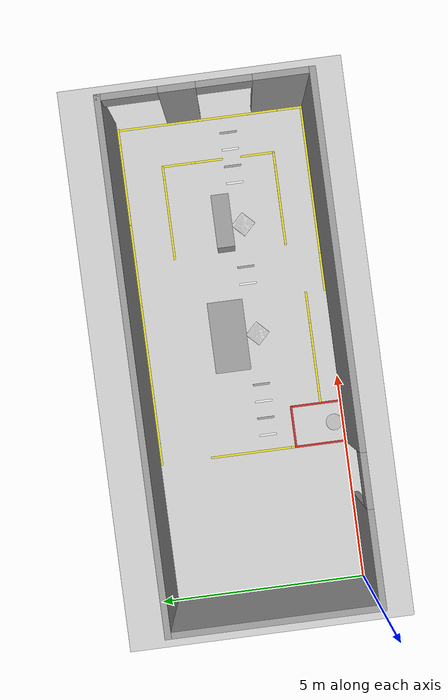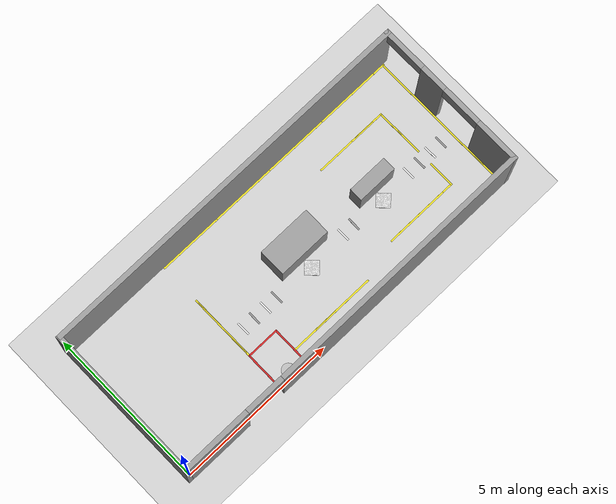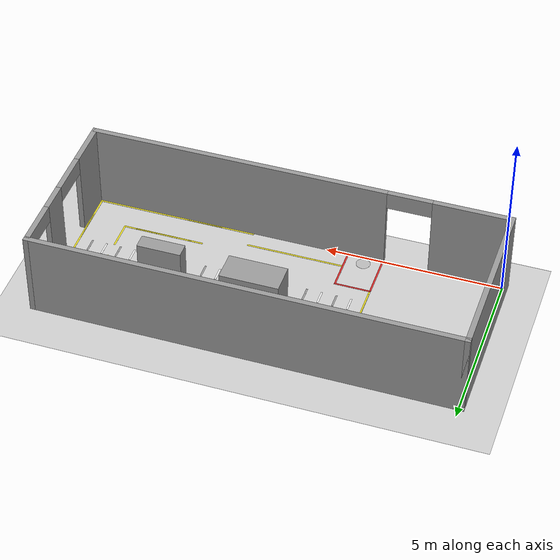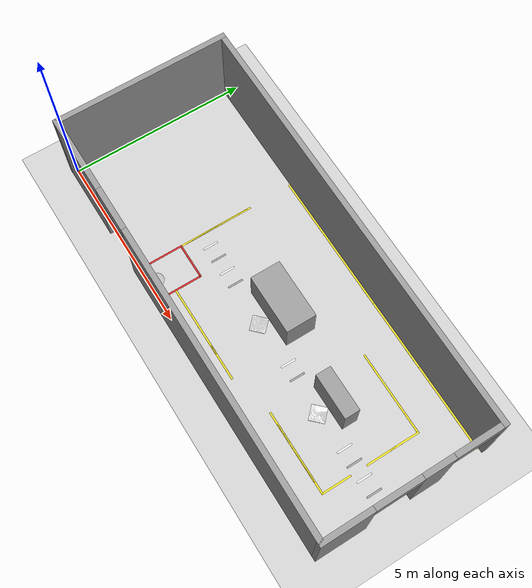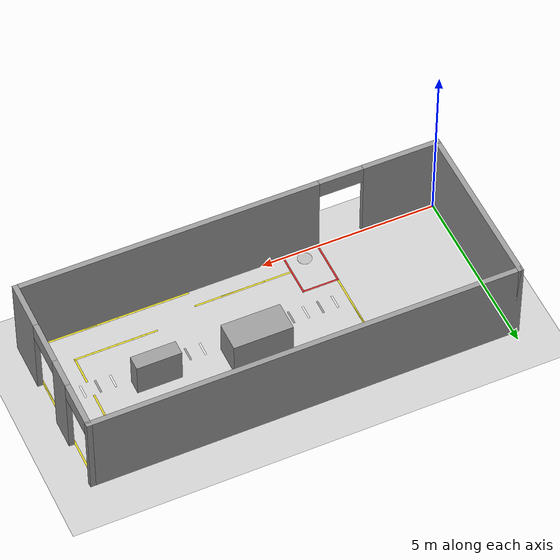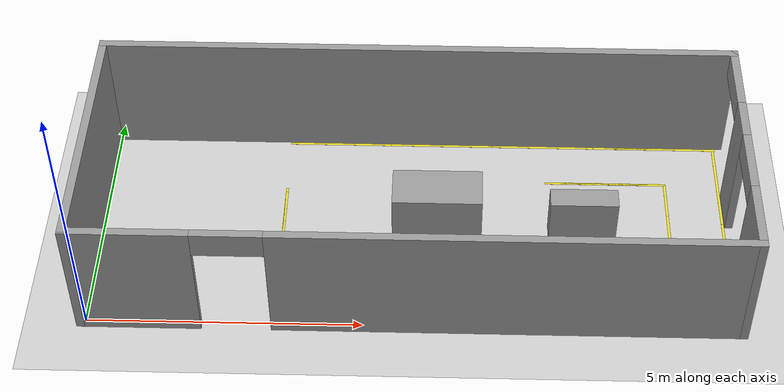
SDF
<sdf version="1.6">
 <world name="default">
  <light name="sun" type="directional">
   <pose>0 0 10 0 -0 0</pose>
   <diffuse>0.8 0.8 0.8 1</diffuse>
   <specular>0.2 0.2 0.2 1</specular>
   <attenuation>
    <range>1000</range>
    <constant>0.9</constant>
    <linear>0.01</linear>
    <quadratic>0.001</quadratic>
   </attenuation>
   <direction>-0.5 0.1 -0.9</direction>
  </light>
  <model name="ground_plane">
   <static>1</static>
   <link name="link">
    <collision name="collision">
     <geometry><plane><normal>0 0 1</normal><size>100 100</size></plane></geometry>
     <surface><friction><ode><mu>100</mu><mu2>50</mu2></ode></friction></surface>
    </collision>
    <visual name="visual">
     <cast_shadows>0</cast_shadows>
     <geometry><plane><normal>0 0 1</normal><size>100 100</size></plane></geometry>
     <material>
      <script><uri>file://media/materials/scripts/gazebo.material</uri><name>Gazebo/Grey</name></script>
     </material>
    </visual>
   </link>
  </model>
  <gravity>0 0 -9.8</gravity>
  <magnetic_field>6e-06 2.3e-05 -4.2e-05</magnetic_field>
  <atmosphere type="adiabatic"/>
  <physics name="default_physics" default="0" type="ode">
   <max_step_size>0.001</max_step_size>
   <real_time_factor>1</real_time_factor>
   <real_time_update_rate>1000</real_time_update_rate>
  </physics>
  <scene><ambient>0.4 0.4 0.4 1</ambient><background>0.7 0.7 0.7 1</background><shadows>1</shadows></scene>
  <spherical_coordinates>
   <surface_model>EARTH_WGS84</surface_model>
   <latitude_deg>0</latitude_deg>
   <longitude_deg>0</longitude_deg>
   <elevation>0</elevation>
   <heading_deg>0</heading_deg>
  </spherical_coordinates>
  <model name="demo_duvar_27072018_0">
   <pose>5.88 2.31 0 0 -0 0</pose>
   <link name="Wall_14">
    <pose>-0 -2.385 0 0 -0 0</pose>
    <visual name="Wall_14_Visual_0">
     <pose>-4.905 0 1.25 0 -0 0</pose>
     <geometry><box><size>2.25 0.15 2.5</size></box></geometry>
     <material>
      <script><uri>file://media/materials/scripts/gazebo.material</uri><name>Gazebo/Grey</name></script>
      <ambient>1 1 1 1</ambient>
     </material>
     <meta><layer>0</layer></meta>
    </visual>
    <collision name="Wall_14_Collision_0">
     <geometry><box><size>2.25 0.15 2.5</size></box></geometry>
     <pose>-4.905 0 1.25 0 -0 0</pose>
    </collision>
    <visual name="Wall_14_Visual_1">
     <pose>1.755 0 1.25 0 -0 0</pose>
     <geometry><box><size>8.55 0.15 2.5</size></box></geometry>
     <material>
      <script><uri>file://media/materials/scripts/gazebo.material</uri><name>Gazebo/Grey</name></script>
      <ambient>1 1 1 1</ambient>
     </material>
     <meta><layer>0</layer></meta>
    </visual>
    <collision name="Wall_14_Collision_1">
     <geometry><box><size>8.55 0.15 2.5</size></box></geometry>
     <pose>1.755 0 1.25 0 -0 0</pose>
    </collision>
    <visual name="Wall_14_Visual_2">
     <pose>-3.15 0 2.25 0 -0 0</pose>
     <geometry><box><size>1.26 0.15 0.5</size></box></geometry>
     <material>
      <script><uri>file://media/materials/scripts/gazebo.material</uri><name>Gazebo/Grey</name></script>
      <ambient>1 1 1 1</ambient>
     </material>
     <meta><layer>0</layer></meta>
    </visual>
    <collision name="Wall_14_Collision_2">
     <geometry><box><size>1.26 0.15 0.5</size></box></geometry>
     <pose>-3.15 0 2.25 0 -0 0</pose>
    </collision>
   </link>
   <link name="Wall_16">
    <pose>5.955 0 0 0 -0 1.5708</pose>
    <visual name="Wall_16_Visual_0">
     <pose>-1.75501 0 1.25 0 -0 0</pose>
     <geometry><box><size>1.41001 0.15 2.5</size></box></geometry>
     <material>
      <script><uri>file://media/materials/scripts/gazebo.material</uri><name>Gazebo/Grey</name></script>
      <ambient>1 1 1 1</ambient>
     </material>
     <meta><layer>0</layer></meta>
    </visual>
    <collision name="Wall_16_Collision_0">
     <geometry><box><size>1.41001 0.15 2.5</size></box></geometry>
     <pose>-1.75501 0 1.25 0 -0 0</pose>
    </collision>
    <visual name="Wall_16_Visual_1">
     <pose>0.63 0 1.25 0 -0 0</pose>
     <geometry><box><size>0.84 0.15 2.5</size></box></geometry>
     <material>
      <script><uri>file://media/materials/scripts/gazebo.material</uri><name>Gazebo/Grey</name></script>
      <ambient>1 1 1 1</ambient>
     </material>
     <meta><layer>0</layer></meta>
    </visual>
    <collision name="Wall_16_Collision_1">
     <geometry><box><size>0.84 0.15 2.5</size></box></geometry>
     <pose>0.63 0 1.25 0 -0 0</pose>
    </collision>
    <visual name="Wall_16_Visual_2">
     <pose>2.38501 0 1.25 0 -0 0</pose>
     <geometry><box><size>0.150013 0.15 2.5</size></box></geometry>
     <material>
      <script><uri>file://media/materials/scripts/gazebo.material</uri><name>Gazebo/Grey</name></script>
      <ambient>1 1 1 1</ambient>
     </material>
     <meta><layer>0</layer></meta>
    </visual>
    <collision name="Wall_16_Collision_2">
     <geometry><box><size>0.150013 0.15 2.5</size></box></geometry>
     <pose>2.38501 0 1.25 0 -0 0</pose>
    </collision>
    <visual name="Wall_16_Visual_3">
     <pose>-0.42 0 2.25 0 -0 0</pose>
     <geometry><box><size>1.26 0.15 0.5</size></box></geometry>
     <material>
      <script><uri>file://media/materials/scripts/gazebo.material</uri><name>Gazebo/Grey</name></script>
      <ambient>1 1 1 1</ambient>
     </material>
     <meta><layer>0</layer></meta>
    </visual>
    <collision name="Wall_16_Collision_3">
     <geometry><box><size>1.26 0.15 0.5</size></box></geometry>
     <pose>-0.42 0 2.25 0 -0 0</pose>
    </collision>
    <visual name="Wall_16_Visual_4">
     <pose>1.68 0 2.25 0 -0 0</pose>
     <geometry><box><size>1.26 0.15 0.5</size></box></geometry>
     <material>
      <script><uri>file://media/materials/scripts/gazebo.material</uri><name>Gazebo/Grey</name></script>
      <ambient>1 1 1 1</ambient>
     </material>
     <meta><layer>0</layer></meta>
    </visual>
    <collision name="Wall_16_Collision_4">
     <geometry><box><size>1.26 0.15 0.5</size></box></geometry>
     <pose>1.68 0 2.25 0 -0 0</pose>
    </collision>
   </link>
   <link name="Wall_19">
    <collision name="Wall_19_Collision">
     <geometry><box><size>12.06 0.15 2.5</size></box></geometry>
     <pose>0 0 1.25 0 -0 0</pose>
    </collision>
    <visual name="Wall_19_Visual">
     <pose>0 0 1.25 0 -0 0</pose>
     <geometry><box><size>12.06 0.15 2.5</size></box></geometry>
     <material>
      <script><uri>file://media/materials/scripts/gazebo.material</uri><name>Gazebo/Grey</name></script>
      <ambient>1 1 1 1</ambient>
     </material>
     <meta><layer>0</layer></meta>
    </visual>
    <pose>-0 2.385 0 0 -0 3.14159</pose>
   </link>
   <link name="Wall_21">
    <collision name="Wall_21_Collision">
     <geometry><box><size>4.92003 0.15 2.5</size></box></geometry>
     <pose>0 0 1.25 0 -0 0</pose>
    </collision>
    <visual name="Wall_21_Visual">
     <pose>0 0 1.25 0 -0 0</pose>
     <geometry><box><size>4.92003 0.15 2.5</size></box></geometry>
     <material>
      <script><uri>file://media/materials/scripts/gazebo.material</uri><name>Gazebo/Grey</name></script>
      <ambient>1 1 1 1</ambient>
     </material>
     <meta><layer>0</layer></meta>
    </visual>
    <pose>-5.955 0 0 0 -0 -1.5708</pose>
   </link>
   <static>1</static>
  </model>
  <model name="Makine1_168x84">
   <link name="link_0">
    <inertial>
     <mass>1</mass>
     <inertia>
      <ixx>0.166667</ixx>
      <ixy>0</ixy>
      <ixz>0</ixz>
      <iyy>0.166667</iyy>
      <iyz>0</iyz>
      <izz>0.166667</izz>
     </inertia>
    </inertial>
    <visual name="visual">
     <geometry><box><size>1.68 0.84 1</size></box></geometry>
     <material>
      <lighting>1</lighting>
      <script><uri>file://media/materials/scripts/gazebo.material</uri><name>Gazebo/Grey</name></script>
      <shader type="pixel"><normal_map>__default__</normal_map></shader>
      <ambient>0.3 0.3 0.3 1</ambient>
      <diffuse>0.7 0.7 0.7 1</diffuse>
      <specular>0.01 0.01 0.01 1</specular>
      <emissive>0 0 0 1</emissive>
     </material>
    </visual>
    <collision name="collision">
     <geometry><box><size>1.68 0.84 1</size></box></geometry>
     <surface>
      <friction>
       <ode><mu>1</mu><mu2>1</mu2><fdir1>0 0 0</fdir1><slip1>0</slip1><slip2>0</slip2></ode>
       <torsional>
        <coefficient>1</coefficient>
        <patch_radius>0</patch_radius>
        <surface_radius>0</surface_radius>
        <use_patch_radius>1</use_patch_radius>
        <ode><slip>0</slip></ode>
       </torsional>
      </friction>
      <bounce><restitution_coefficient>0</restitution_coefficient><threshold>1e+06</threshold></bounce>
      <contact>
       <collide_without_contact>0</collide_without_contact>
       <collide_without_contact_bitmask>1</collide_without_contact_bitmask>
       <collide_bitmask>1</collide_bitmask>
       <ode>
        <soft_cfm>0</soft_cfm>
        <soft_erp>0.2</soft_erp>
        <kp>1e+13</kp>
        <kd>1</kd>
        <max_vel>0.01</max_vel>
        <min_depth>0</min_depth>
       </ode>
       <bullet>
        <split_impulse>1</split_impulse>
        <split_impulse_penetration_threshold>-0.01</split_impulse_penetration_threshold>
        <soft_cfm>0</soft_cfm>
        <soft_erp>0.2</soft_erp>
        <kp>1e+13</kp>
        <kd>1</kd>
       </bullet>
      </contact>
     </surface>
    </collision>
   </link>
   <static>1</static>
   <pose>6.3 2.52 0.5 0 -0 0</pose>
  </model>
  <model name="Mekine2_126x42">
   <link name="link_1">
    <inertial>
     <mass>1</mass>
     <inertia>
      <ixx>0.166667</ixx>
      <ixy>0</ixy>
      <ixz>0</ixz>
      <iyy>0.166667</iyy>
      <iyz>0</iyz>
      <izz>0.166667</izz>
     </inertia>
    </inertial>
    <visual name="visual">
     <geometry><box><size>1.26 0.42 1</size></box></geometry>
     <material>
      <lighting>1</lighting>
      <script><uri>file://media/materials/scripts/gazebo.material</uri><name>Gazebo/Grey</name></script>
      <shader type="pixel"><normal_map>__default__</normal_map></shader>
      <ambient>0.3 0.3 0.3 1</ambient>
      <diffuse>0.7 0.7 0.7 1</diffuse>
      <specular>0.01 0.01 0.01 1</specular>
      <emissive>0 0 0 1</emissive>
     </material>
    </visual>
    <collision name="collision">
     <geometry><box><size>1.26 0.42 1</size></box></geometry>
     <surface>
      <friction>
       <ode><mu>1</mu><mu2>1</mu2><fdir1>0 0 0</fdir1><slip1>0</slip1><slip2>0</slip2></ode>
       <torsional>
        <coefficient>1</coefficient>
        <patch_radius>0</patch_radius>
        <surface_radius>0</surface_radius>
        <use_patch_radius>1</use_patch_radius>
        <ode><slip>0</slip></ode>
       </torsional>
      </friction>
      <bounce><restitution_coefficient>0</restitution_coefficient><threshold>1e+06</threshold></bounce>
      <contact>
       <collide_without_contact>0</collide_without_contact>
       <collide_without_contact_bitmask>1</collide_without_contact_bitmask>
       <collide_bitmask>1</collide_bitmask>
       <ode>
        <soft_cfm>0</soft_cfm>
        <soft_erp>0.2</soft_erp>
        <kp>1e+13</kp>
        <kd>1</kd>
        <max_vel>0.01</max_vel>
        <min_depth>0</min_depth>
       </ode>
       <bullet>
        <split_impulse>1</split_impulse>
        <split_impulse_penetration_threshold>-0.01</split_impulse_penetration_threshold>
        <soft_cfm>0</soft_cfm>
        <soft_erp>0.2</soft_erp>
        <kp>1e+13</kp>
        <kd>1</kd>
       </bullet>
      </contact>
     </surface>
    </collision>
   </link>
   <static>0</static>
   <pose>9.03 2.31 0.499999 -3e-06 0 -9e-06</pose>
  </model>
  <model name="oneDemoParking">
   <link name="link_1">
    <inertial>
     <mass>1</mass>
     <inertia>
      <ixx>0.166667</ixx>
      <ixy>0</ixy>
      <ixz>0</ixz>
      <iyy>0.166667</iyy>
      <iyz>0</iyz>
      <izz>0.166667</izz>
     </inertia>
    </inertial>
    <visual name="visual">
     <pose>-0.5 0 0 0 -0 0</pose>
     <geometry><box><size>0.05 1.26 0.001</size></box></geometry>
     <material>
      <lighting>1</lighting>
      <script><uri>file://media/materials/scripts/gazebo.material</uri><name>Gazebo/Red</name></script>
      <shader type="pixel"><normal_map>__default__</normal_map></shader>
     </material>
    </visual>
    <visual name="ModelPreview_3::link_1::visual_3">
     <pose>0 0.605 0 0 -0 0</pose>
     <geometry><box><size>1.05 0.05 0.001</size></box></geometry>
     <material>
      <lighting>1</lighting>
      <script><uri>file://media/materials/scripts/gazebo.material</uri><name>Gazebo/Red</name></script>
      <shader type="pixel"><normal_map>__default__</normal_map></shader>
     </material>
    </visual>
    <visual name="ModelPreview_3::link_1::visual_2">
     <pose>0.5 0 0 0 -0 0</pose>
     <geometry><box><size>0.05 1.26 0.001</size></box></geometry>
     <material>
      <lighting>1</lighting>
      <script><uri>file://media/materials/scripts/gazebo.material</uri><name>Gazebo/Red</name></script>
      <shader type="pixel"><normal_map>__default__</normal_map></shader>
     </material>
    </visual>
    <visual name="ModelPreview_3::link_1::visual_4">
     <pose>0.26 -0.31 0 0 -0 2.7</pose>
     <geometry>
      <mesh><uri>model://oneDemoParking/model/model.dae</uri><scale>0.22 0.22 0.22</scale></mesh>
     </geometry>
     <material><lighting>1</lighting><shader type="pixel"><normal_map>__default__</normal_map></shader></material>
    </visual>
   </link>
   <static>1</static>
   <pose>3.885 0.63 0 0 -0 0</pose>
  </model>
  <model name="whiteLine_42">
   <link name="link_3">
    <inertial>
     <mass>1</mass>
     <inertia>
      <ixx>0.166667</ixx>
      <ixy>0</ixy>
      <ixz>0</ixz>
      <iyy>0.166667</iyy>
      <iyz>0</iyz>
      <izz>0.166667</izz>
     </inertia>
    </inertial>
    <visual name="visual">
     <pose>-0.21 0 0 0 -0 0</pose>
     <geometry><box><size>0.05 0.42 0.001</size></box></geometry>
     <material>
      <lighting>1</lighting>
      <script><uri>file://media/materials/scripts/gazebo.material</uri><name>Gazebo/White</name></script>
      <shader type="pixel"><normal_map>__default__</normal_map></shader>
      <ambient>1 1 1 1</ambient>
      <diffuse>1 1 1 1</diffuse>
      <specular>0.01 0.01 0.01 1</specular>
      <emissive>0 0 0 1</emissive>
     </material>
    </visual>
    <visual name="ModelPreview_7::link_3::visual_1">
     <pose>0.21 0 0 0 -0 0</pose>
     <geometry><box><size>0.05 0.42 0.001</size></box></geometry>
     <material>
      <lighting>1</lighting>
      <script><uri>file://media/materials/scripts/gazebo.material</uri><name>Gazebo/Grey</name></script>
      <shader type="pixel"><normal_map>__default__</normal_map></shader>
      <ambient>1 1 1 1</ambient>
      <diffuse>1 1 1 1</diffuse>
      <specular>0.01 0.01 0.01 1</specular>
      <emissive>0 0 0 1</emissive>
     </material>
    </visual>
    <collision name="collision">
     <pose>-0.21 0 0 0 -0 0</pose>
     <geometry><box><size>0.05 0.42 0.001</size></box></geometry>
     <surface>
      <friction>
       <ode><mu>1</mu><mu2>1</mu2><fdir1>0 0 0</fdir1><slip1>0</slip1><slip2>0</slip2></ode>
       <torsional>
        <coefficient>1</coefficient>
        <patch_radius>0</patch_radius>
        <surface_radius>0</surface_radius>
        <use_patch_radius>1</use_patch_radius>
        <ode><slip>0</slip></ode>
       </torsional>
      </friction>
      <bounce><restitution_coefficient>0</restitution_coefficient><threshold>1e+06</threshold></bounce>
      <contact>
       <collide_without_contact>0</collide_without_contact>
       <collide_without_contact_bitmask>1</collide_without_contact_bitmask>
       <collide_bitmask>1</collide_bitmask>
       <ode>
        <soft_cfm>0</soft_cfm>
        <soft_erp>0.2</soft_erp>
        <kp>1e+13</kp>
        <kd>1</kd>
        <max_vel>0.01</max_vel>
        <min_depth>0</min_depth>
       </ode>
       <bullet>
        <split_impulse>1</split_impulse>
        <split_impulse_penetration_threshold>-0.01</split_impulse_penetration_threshold>
        <soft_cfm>0</soft_cfm>
        <soft_erp>0.2</soft_erp>
        <kp>1e+13</kp>
        <kd>1</kd>
       </bullet>
      </contact>
     </surface>
    </collision>
    <collision name="collision_1">
     <pose>0.21 0 0 0 -0 0</pose>
     <geometry><box><size>0.05 0.42 0.001</size></box></geometry>
     <surface>
      <friction>
       <ode><mu>1</mu><mu2>1</mu2><fdir1>0 0 0</fdir1><slip1>0</slip1><slip2>0</slip2></ode>
       <torsional>
        <coefficient>1</coefficient>
        <patch_radius>0</patch_radius>
        <surface_radius>0</surface_radius>
        <use_patch_radius>1</use_patch_radius>
        <ode><slip>0</slip></ode>
       </torsional>
      </friction>
      <bounce><restitution_coefficient>0</restitution_coefficient><threshold>1e+06</threshold></bounce>
      <contact>
       <collide_without_contact>0</collide_without_contact>
       <collide_without_contact_bitmask>1</collide_without_contact_bitmask>
       <collide_bitmask>1</collide_bitmask>
       <ode>
        <soft_cfm>0</soft_cfm>
        <soft_erp>0.2</soft_erp>
        <kp>1e+13</kp>
        <kd>1</kd>
        <max_vel>0.01</max_vel>
        <min_depth>0</min_depth>
       </ode>
       <bullet>
        <split_impulse>1</split_impulse>
        <split_impulse_penetration_threshold>-0.01</split_impulse_penetration_threshold>
        <soft_cfm>0</soft_cfm>
        <soft_erp>0.2</soft_erp>
        <kp>1e+13</kp>
        <kd>1</kd>
       </bullet>
      </contact>
     </surface>
    </collision>
   </link>
   <static>1</static>
   <pose>3.99 1.89 0 0 -0 0</pose>
  </model>
  <model name="whiteLine_42_0">
   <link name="link_3">
    <inertial>
     <mass>1</mass>
     <inertia>
      <ixx>0.166667</ixx>
      <ixy>0</ixy>
      <ixz>0</ixz>
      <iyy>0.166667</iyy>
      <iyz>0</iyz>
      <izz>0.166667</izz>
     </inertia>
    </inertial>
    <visual name="visual">
     <pose>-0.21 0 0 0 -0 0</pose>
     <geometry><box><size>0.05 0.42 0.001</size></box></geometry>
     <material>
      <lighting>1</lighting>
      <script><uri>file://media/materials/scripts/gazebo.material</uri><name>Gazebo/White</name></script>
      <shader type="pixel"><normal_map>__default__</normal_map></shader>
      <ambient>1 1 1 1</ambient>
      <diffuse>1 1 1 1</diffuse>
      <specular>0.01 0.01 0.01 1</specular>
      <emissive>0 0 0 1</emissive>
     </material>
    </visual>
    <visual name="ModelPreview_7::link_3::visual_1">
     <pose>0.21 0 0 0 -0 0</pose>
     <geometry><box><size>0.05 0.42 0.001</size></box></geometry>
     <material>
      <lighting>1</lighting>
      <script><uri>file://media/materials/scripts/gazebo.material</uri><name>Gazebo/Grey</name></script>
      <shader type="pixel"><normal_map>__default__</normal_map></shader>
      <ambient>1 1 1 1</ambient>
      <diffuse>1 1 1 1</diffuse>
      <specular>0.01 0.01 0.01 1</specular>
      <emissive>0 0 0 1</emissive>
     </material>
    </visual>
    <collision name="collision">
     <pose>-0.21 0 0 0 -0 0</pose>
     <geometry><box><size>0.05 0.42 0.001</size></box></geometry>
     <surface>
      <friction>
       <ode><mu>1</mu><mu2>1</mu2><fdir1>0 0 0</fdir1><slip1>0</slip1><slip2>0</slip2></ode>
       <torsional>
        <coefficient>1</coefficient>
        <patch_radius>0</patch_radius>
        <surface_radius>0</surface_radius>
        <use_patch_radius>1</use_patch_radius>
        <ode><slip>0</slip></ode>
       </torsional>
      </friction>
      <bounce><restitution_coefficient>0</restitution_coefficient><threshold>1e+06</threshold></bounce>
      <contact>
       <collide_without_contact>0</collide_without_contact>
       <collide_without_contact_bitmask>1</collide_without_contact_bitmask>
       <collide_bitmask>1</collide_bitmask>
       <ode>
        <soft_cfm>0</soft_cfm>
        <soft_erp>0.2</soft_erp>
        <kp>1e+13</kp>
        <kd>1</kd>
        <max_vel>0.01</max_vel>
        <min_depth>0</min_depth>
       </ode>
       <bullet>
        <split_impulse>1</split_impulse>
        <split_impulse_penetration_threshold>-0.01</split_impulse_penetration_threshold>
        <soft_cfm>0</soft_cfm>
        <soft_erp>0.2</soft_erp>
        <kp>1e+13</kp>
        <kd>1</kd>
       </bullet>
      </contact>
     </surface>
    </collision>
    <collision name="collision_1">
     <pose>0.21 0 0 0 -0 0</pose>
     <geometry><box><size>0.05 0.42 0.001</size></box></geometry>
     <surface>
      <friction>
       <ode><mu>1</mu><mu2>1</mu2><fdir1>0 0 0</fdir1><slip1>0</slip1><slip2>0</slip2></ode>
       <torsional>
        <coefficient>1</coefficient>
        <patch_radius>0</patch_radius>
        <surface_radius>0</surface_radius>
        <use_patch_radius>1</use_patch_radius>
        <ode><slip>0</slip></ode>
       </torsional>
      </friction>
      <bounce><restitution_coefficient>0</restitution_coefficient><threshold>1e+06</threshold></bounce>
      <contact>
       <collide_without_contact>0</collide_without_contact>
       <collide_without_contact_bitmask>1</collide_without_contact_bitmask>
       <collide_bitmask>1</collide_bitmask>
       <ode>
        <soft_cfm>0</soft_cfm>
        <soft_erp>0.2</soft_erp>
        <kp>1e+13</kp>
        <kd>1</kd>
        <max_vel>0.01</max_vel>
        <min_depth>0</min_depth>
       </ode>
       <bullet>
        <split_impulse>1</split_impulse>
        <split_impulse_penetration_threshold>-0.01</split_impulse_penetration_threshold>
        <soft_cfm>0</soft_cfm>
        <soft_erp>0.2</soft_erp>
        <kp>1e+13</kp>
        <kd>1</kd>
       </bullet>
      </contact>
     </surface>
    </collision>
   </link>
   <static>1</static>
   <pose>4.83 1.89 0 0 -0 0</pose>
  </model>
  <model name="whiteLine_42_1">
   <link name="link_3">
    <inertial>
     <mass>1</mass>
     <inertia>
      <ixx>0.166667</ixx>
      <ixy>0</ixy>
      <ixz>0</ixz>
      <iyy>0.166667</iyy>
      <iyz>0</iyz>
      <izz>0.166667</izz>
     </inertia>
    </inertial>
    <visual name="visual">
     <pose>-0.21 0 0 0 -0 0</pose>
     <geometry><box><size>0.05 0.42 0.001</size></box></geometry>
     <material>
      <lighting>1</lighting>
      <script><uri>file://media/materials/scripts/gazebo.material</uri><name>Gazebo/White</name></script>
      <shader type="pixel"><normal_map>__default__</normal_map></shader>
      <ambient>1 1 1 1</ambient>
      <diffuse>1 1 1 1</diffuse>
      <specular>0.01 0.01 0.01 1</specular>
      <emissive>0 0 0 1</emissive>
     </material>
    </visual>
    <visual name="ModelPreview_7::link_3::visual_1">
     <pose>0.21 0 0 0 -0 0</pose>
     <geometry><box><size>0.05 0.42 0.001</size></box></geometry>
     <material>
      <lighting>1</lighting>
      <script><uri>file://media/materials/scripts/gazebo.material</uri><name>Gazebo/Grey</name></script>
      <shader type="pixel"><normal_map>__default__</normal_map></shader>
      <ambient>1 1 1 1</ambient>
      <diffuse>1 1 1 1</diffuse>
      <specular>0.01 0.01 0.01 1</specular>
      <emissive>0 0 0 1</emissive>
     </material>
    </visual>
    <collision name="collision">
     <pose>-0.21 0 0 0 -0 0</pose>
     <geometry><box><size>0.05 0.42 0.001</size></box></geometry>
     <surface>
      <friction>
       <ode><mu>1</mu><mu2>1</mu2><fdir1>0 0 0</fdir1><slip1>0</slip1><slip2>0</slip2></ode>
       <torsional>
        <coefficient>1</coefficient>
        <patch_radius>0</patch_radius>
        <surface_radius>0</surface_radius>
        <use_patch_radius>1</use_patch_radius>
        <ode><slip>0</slip></ode>
       </torsional>
      </friction>
      <bounce><restitution_coefficient>0</restitution_coefficient><threshold>1e+06</threshold></bounce>
      <contact>
       <collide_without_contact>0</collide_without_contact>
       <collide_without_contact_bitmask>1</collide_without_contact_bitmask>
       <collide_bitmask>1</collide_bitmask>
       <ode>
        <soft_cfm>0</soft_cfm>
        <soft_erp>0.2</soft_erp>
        <kp>1e+13</kp>
        <kd>1</kd>
        <max_vel>0.01</max_vel>
        <min_depth>0</min_depth>
       </ode>
       <bullet>
        <split_impulse>1</split_impulse>
        <split_impulse_penetration_threshold>-0.01</split_impulse_penetration_threshold>
        <soft_cfm>0</soft_cfm>
        <soft_erp>0.2</soft_erp>
        <kp>1e+13</kp>
        <kd>1</kd>
       </bullet>
      </contact>
     </surface>
    </collision>
    <collision name="collision_1">
     <pose>0.21 0 0 0 -0 0</pose>
     <geometry><box><size>0.05 0.42 0.001</size></box></geometry>
     <surface>
      <friction>
       <ode><mu>1</mu><mu2>1</mu2><fdir1>0 0 0</fdir1><slip1>0</slip1><slip2>0</slip2></ode>
       <torsional>
        <coefficient>1</coefficient>
        <patch_radius>0</patch_radius>
        <surface_radius>0</surface_radius>
        <use_patch_radius>1</use_patch_radius>
        <ode><slip>0</slip></ode>
       </torsional>
      </friction>
      <bounce><restitution_coefficient>0</restitution_coefficient><threshold>1e+06</threshold></bounce>
      <contact>
       <collide_without_contact>0</collide_without_contact>
       <collide_without_contact_bitmask>1</collide_without_contact_bitmask>
       <collide_bitmask>1</collide_bitmask>
       <ode>
        <soft_cfm>0</soft_cfm>
        <soft_erp>0.2</soft_erp>
        <kp>1e+13</kp>
        <kd>1</kd>
        <max_vel>0.01</max_vel>
        <min_depth>0</min_depth>
       </ode>
       <bullet>
        <split_impulse>1</split_impulse>
        <split_impulse_penetration_threshold>-0.01</split_impulse_penetration_threshold>
        <soft_cfm>0</soft_cfm>
        <soft_erp>0.2</soft_erp>
        <kp>1e+13</kp>
        <kd>1</kd>
       </bullet>
      </contact>
     </surface>
    </collision>
   </link>
   <static>1</static>
   <pose>7.77 1.89 0 0 -0 0</pose>
  </model>
  <model name="whiteLine_42_2">
   <link name="link_3">
    <inertial>
     <mass>1</mass>
     <inertia>
      <ixx>0.166667</ixx>
      <ixy>0</ixy>
      <ixz>0</ixz>
      <iyy>0.166667</iyy>
      <iyz>0</iyz>
      <izz>0.166667</izz>
     </inertia>
    </inertial>
    <visual name="visual">
     <pose>-0.21 0 0 0 -0 0</pose>
     <geometry><box><size>0.05 0.42 0.001</size></box></geometry>
     <material>
      <lighting>1</lighting>
      <script><uri>file://media/materials/scripts/gazebo.material</uri><name>Gazebo/White</name></script>
      <shader type="pixel"><normal_map>__default__</normal_map></shader>
      <ambient>1 1 1 1</ambient>
      <diffuse>1 1 1 1</diffuse>
      <specular>0.01 0.01 0.01 1</specular>
      <emissive>0 0 0 1</emissive>
     </material>
    </visual>
    <visual name="ModelPreview_7::link_3::visual_1">
     <pose>0.21 0 0 0 -0 0</pose>
     <geometry><box><size>0.05 0.42 0.001</size></box></geometry>
     <material>
      <lighting>1</lighting>
      <script><uri>file://media/materials/scripts/gazebo.material</uri><name>Gazebo/Grey</name></script>
      <shader type="pixel"><normal_map>__default__</normal_map></shader>
      <ambient>1 1 1 1</ambient>
      <diffuse>1 1 1 1</diffuse>
      <specular>0.01 0.01 0.01 1</specular>
      <emissive>0 0 0 1</emissive>
     </material>
    </visual>
    <collision name="collision">
     <pose>-0.21 0 0 0 -0 0</pose>
     <geometry><box><size>0.05 0.42 0.001</size></box></geometry>
     <surface>
      <friction>
       <ode><mu>1</mu><mu2>1</mu2><fdir1>0 0 0</fdir1><slip1>0</slip1><slip2>0</slip2></ode>
       <torsional>
        <coefficient>1</coefficient>
        <patch_radius>0</patch_radius>
        <surface_radius>0</surface_radius>
        <use_patch_radius>1</use_patch_radius>
        <ode><slip>0</slip></ode>
       </torsional>
      </friction>
      <bounce><restitution_coefficient>0</restitution_coefficient><threshold>1e+06</threshold></bounce>
      <contact>
       <collide_without_contact>0</collide_without_contact>
       <collide_without_contact_bitmask>1</collide_without_contact_bitmask>
       <collide_bitmask>1</collide_bitmask>
       <ode>
        <soft_cfm>0</soft_cfm>
        <soft_erp>0.2</soft_erp>
        <kp>1e+13</kp>
        <kd>1</kd>
        <max_vel>0.01</max_vel>
        <min_depth>0</min_depth>
       </ode>
       <bullet>
        <split_impulse>1</split_impulse>
        <split_impulse_penetration_threshold>-0.01</split_impulse_penetration_threshold>
        <soft_cfm>0</soft_cfm>
        <soft_erp>0.2</soft_erp>
        <kp>1e+13</kp>
        <kd>1</kd>
       </bullet>
      </contact>
     </surface>
    </collision>
    <collision name="collision_1">
     <pose>0.21 0 0 0 -0 0</pose>
     <geometry><box><size>0.05 0.42 0.001</size></box></geometry>
     <surface>
      <friction>
       <ode><mu>1</mu><mu2>1</mu2><fdir1>0 0 0</fdir1><slip1>0</slip1><slip2>0</slip2></ode>
       <torsional>
        <coefficient>1</coefficient>
        <patch_radius>0</patch_radius>
        <surface_radius>0</surface_radius>
        <use_patch_radius>1</use_patch_radius>
        <ode><slip>0</slip></ode>
       </torsional>
      </friction>
      <bounce><restitution_coefficient>0</restitution_coefficient><threshold>1e+06</threshold></bounce>
      <contact>
       <collide_without_contact>0</collide_without_contact>
       <collide_without_contact_bitmask>1</collide_without_contact_bitmask>
       <collide_bitmask>1</collide_bitmask>
       <ode>
        <soft_cfm>0</soft_cfm>
        <soft_erp>0.2</soft_erp>
        <kp>1e+13</kp>
        <kd>1</kd>
        <max_vel>0.01</max_vel>
        <min_depth>0</min_depth>
       </ode>
       <bullet>
        <split_impulse>1</split_impulse>
        <split_impulse_penetration_threshold>-0.01</split_impulse_penetration_threshold>
        <soft_cfm>0</soft_cfm>
        <soft_erp>0.2</soft_erp>
        <kp>1e+13</kp>
        <kd>1</kd>
       </bullet>
      </contact>
     </surface>
    </collision>
   </link>
   <static>1</static>
   <pose>10.29 1.89 0 0 -0 0</pose>
  </model>
  <model name="whiteLine_42_3">
   <link name="link_3">
    <inertial>
     <mass>1</mass>
     <inertia>
      <ixx>0.166667</ixx>
      <ixy>0</ixy>
      <ixz>0</ixz>
      <iyy>0.166667</iyy>
      <iyz>0</iyz>
      <izz>0.166667</izz>
     </inertia>
    </inertial>
    <visual name="visual">
     <pose>-0.21 0 0 0 -0 0</pose>
     <geometry><box><size>0.05 0.42 0.001</size></box></geometry>
     <material>
      <lighting>1</lighting>
      <script><uri>file://media/materials/scripts/gazebo.material</uri><name>Gazebo/White</name></script>
      <shader type="pixel"><normal_map>__default__</normal_map></shader>
      <ambient>1 1 1 1</ambient>
      <diffuse>1 1 1 1</diffuse>
      <specular>0.01 0.01 0.01 1</specular>
      <emissive>0 0 0 1</emissive>
     </material>
    </visual>
    <visual name="ModelPreview_7::link_3::visual_1">
     <pose>0.21 0 0 0 -0 0</pose>
     <geometry><box><size>0.05 0.42 0.001</size></box></geometry>
     <material>
      <lighting>1</lighting>
      <script><uri>file://media/materials/scripts/gazebo.material</uri><name>Gazebo/Grey</name></script>
      <shader type="pixel"><normal_map>__default__</normal_map></shader>
      <ambient>1 1 1 1</ambient>
      <diffuse>1 1 1 1</diffuse>
      <specular>0.01 0.01 0.01 1</specular>
      <emissive>0 0 0 1</emissive>
     </material>
    </visual>
    <collision name="collision">
     <pose>-0.21 0 0 0 -0 0</pose>
     <geometry><box><size>0.05 0.42 0.001</size></box></geometry>
     <surface>
      <friction>
       <ode><mu>1</mu><mu2>1</mu2><fdir1>0 0 0</fdir1><slip1>0</slip1><slip2>0</slip2></ode>
       <torsional>
        <coefficient>1</coefficient>
        <patch_radius>0</patch_radius>
        <surface_radius>0</surface_radius>
        <use_patch_radius>1</use_patch_radius>
        <ode><slip>0</slip></ode>
       </torsional>
      </friction>
      <bounce><restitution_coefficient>0</restitution_coefficient><threshold>1e+06</threshold></bounce>
      <contact>
       <collide_without_contact>0</collide_without_contact>
       <collide_without_contact_bitmask>1</collide_without_contact_bitmask>
       <collide_bitmask>1</collide_bitmask>
       <ode>
        <soft_cfm>0</soft_cfm>
        <soft_erp>0.2</soft_erp>
        <kp>1e+13</kp>
        <kd>1</kd>
        <max_vel>0.01</max_vel>
        <min_depth>0</min_depth>
       </ode>
       <bullet>
        <split_impulse>1</split_impulse>
        <split_impulse_penetration_threshold>-0.01</split_impulse_penetration_threshold>
        <soft_cfm>0</soft_cfm>
        <soft_erp>0.2</soft_erp>
        <kp>1e+13</kp>
        <kd>1</kd>
       </bullet>
      </contact>
     </surface>
    </collision>
    <collision name="collision_1">
     <pose>0.21 0 0 0 -0 0</pose>
     <geometry><box><size>0.05 0.42 0.001</size></box></geometry>
     <surface>
      <friction>
       <ode><mu>1</mu><mu2>1</mu2><fdir1>0 0 0</fdir1><slip1>0</slip1><slip2>0</slip2></ode>
       <torsional>
        <coefficient>1</coefficient>
        <patch_radius>0</patch_radius>
        <surface_radius>0</surface_radius>
        <use_patch_radius>1</use_patch_radius>
        <ode><slip>0</slip></ode>
       </torsional>
      </friction>
      <bounce><restitution_coefficient>0</restitution_coefficient><threshold>1e+06</threshold></bounce>
      <contact>
       <collide_without_contact>0</collide_without_contact>
       <collide_without_contact_bitmask>1</collide_without_contact_bitmask>
       <collide_bitmask>1</collide_bitmask>
       <ode>
        <soft_cfm>0</soft_cfm>
        <soft_erp>0.2</soft_erp>
        <kp>1e+13</kp>
        <kd>1</kd>
        <max_vel>0.01</max_vel>
        <min_depth>0</min_depth>
       </ode>
       <bullet>
        <split_impulse>1</split_impulse>
        <split_impulse_penetration_threshold>-0.01</split_impulse_penetration_threshold>
        <soft_cfm>0</soft_cfm>
        <soft_erp>0.2</soft_erp>
        <kp>1e+13</kp>
        <kd>1</kd>
       </bullet>
      </contact>
     </surface>
    </collision>
   </link>
   <static>1</static>
   <pose>11.13 1.89 0 0 -0 0</pose>
  </model>
  <model name="newPedestrianSign">
   <link name="link_7">
    <inertial>
     <mass>1</mass>
     <inertia>
      <ixx>0.166667</ixx>
      <ixy>0</ixy>
      <ixz>0</ixz>
      <iyy>0.166667</iyy>
      <iyz>0</iyz>
      <izz>0.166667</izz>
     </inertia>
    </inertial>
    <visual name="visual">
     <pose>-0.2 -0.2 0 -1.5708 -0 0</pose>
     <geometry>
      <mesh><uri>model://newPedestrianSign/model/model.dae</uri><scale>0.7 0.7 0.7</scale></mesh>
     </geometry>
     <material><lighting>1</lighting></material>
    </visual>
   </link>
   <static>1</static>
   <pose>6.3 1.8 -0.02 0 -0 0</pose>
  </model>
  <model name="newPedestrianSign_0">
   <link name="link_7">
    <inertial>
     <mass>1</mass>
     <inertia>
      <ixx>0.166667</ixx>
      <ixy>0</ixy>
      <ixz>0</ixz>
      <iyy>0.166667</iyy>
      <iyz>0</iyz>
      <izz>0.166667</izz>
     </inertia>
    </inertial>
    <visual name="visual">
     <pose>-0.2 -0.2 0 -1.5708 -0 0</pose>
     <geometry>
      <mesh><uri>model://newPedestrianSign/model/model.dae</uri><scale>0.7 0.7 0.7</scale></mesh>
     </geometry>
     <material><lighting>1</lighting></material>
    </visual>
   </link>
   <static>1</static>
   <pose>9.03 1.8 -0.02 0 -0 0</pose>
  </model>
  <model name="line2m">
   <link name="link_0">
    <inertial>
     <mass>1</mass>
     <inertia>
      <ixx>0.166667</ixx>
      <ixy>0</ixy>
      <ixz>0</ixz>
      <iyy>0.166667</iyy>
      <iyz>0</iyz>
      <izz>0.166667</izz>
     </inertia>
    </inertial>
    <visual name="visual">
     <geometry><box><size>2 0.05 0.001</size></box></geometry>
     <material>
      <lighting>1</lighting>
      <script><uri>file://media/materials/scripts/gazebo.material</uri><name>Gazebo/Yellow</name></script>
     </material>
    </visual>
    <collision name="collision">
     <geometry><box><size>2 0.05 0.001</size></box></geometry>
     <surface>
      <friction>
       <ode><mu>1</mu><mu2>1</mu2><fdir1>0 0 0</fdir1><slip1>0</slip1><slip2>0</slip2></ode>
       <torsional>
        <coefficient>1</coefficient>
        <patch_radius>0</patch_radius>
        <surface_radius>0</surface_radius>
        <use_patch_radius>1</use_patch_radius>
        <ode><slip>0</slip></ode>
       </torsional>
      </friction>
      <bounce><restitution_coefficient>0</restitution_coefficient><threshold>1e+06</threshold></bounce>
      <contact>
       <collide_without_contact>0</collide_without_contact>
       <collide_without_contact_bitmask>1</collide_without_contact_bitmask>
       <collide_bitmask>1</collide_bitmask>
       <ode>
        <soft_cfm>0</soft_cfm>
        <soft_erp>0.2</soft_erp>
        <kp>1e+13</kp>
        <kd>1</kd>
        <max_vel>0.01</max_vel>
        <min_depth>0</min_depth>
       </ode>
       <bullet>
        <split_impulse>1</split_impulse>
        <split_impulse_penetration_threshold>-0.01</split_impulse_penetration_threshold>
        <soft_cfm>0</soft_cfm>
        <soft_erp>0.2</soft_erp>
        <kp>1e+13</kp>
        <kd>1</kd>
       </bullet>
      </contact>
     </surface>
    </collision>
   </link>
   <static>1</static>
   <pose>4.36039 4.59 0 0 -0 0</pose>
  </model>
  <model name="line2m_0">
   <link name="link_0">
    <inertial>
     <mass>1</mass>
     <inertia>
      <ixx>0.166667</ixx>
      <ixy>0</ixy>
      <ixz>0</ixz>
      <iyy>0.166667</iyy>
      <iyz>0</iyz>
      <izz>0.166667</izz>
     </inertia>
    </inertial>
    <visual name="visual">
     <geometry><box><size>2 0.05 0.001</size></box></geometry>
     <material>
      <lighting>1</lighting>
      <script><uri>file://media/materials/scripts/gazebo.material</uri><name>Gazebo/Yellow</name></script>
     </material>
    </visual>
    <collision name="collision">
     <geometry><box><size>2 0.05 0.001</size></box></geometry>
     <surface>
      <friction>
       <ode><mu>1</mu><mu2>1</mu2><fdir1>0 0 0</fdir1><slip1>0</slip1><slip2>0</slip2></ode>
       <torsional>
        <coefficient>1</coefficient>
        <patch_radius>0</patch_radius>
        <surface_radius>0</surface_radius>
        <use_patch_radius>1</use_patch_radius>
        <ode><slip>0</slip></ode>
       </torsional>
      </friction>
      <bounce><restitution_coefficient>0</restitution_coefficient><threshold>1e+06</threshold></bounce>
      <contact>
       <collide_without_contact>0</collide_without_contact>
       <collide_without_contact_bitmask>1</collide_without_contact_bitmask>
       <collide_bitmask>1</collide_bitmask>
       <ode>
        <soft_cfm>0</soft_cfm>
        <soft_erp>0.2</soft_erp>
        <kp>1e+13</kp>
        <kd>1</kd>
        <max_vel>0.01</max_vel>
        <min_depth>0</min_depth>
       </ode>
       <bullet>
        <split_impulse>1</split_impulse>
        <split_impulse_penetration_threshold>-0.01</split_impulse_penetration_threshold>
        <soft_cfm>0</soft_cfm>
        <soft_erp>0.2</soft_erp>
        <kp>1e+13</kp>
        <kd>1</kd>
       </bullet>
      </contact>
     </surface>
    </collision>
   </link>
   <static>1</static>
   <pose>6.35922 4.59 0 0 -0 0</pose>
  </model>
  <model name="line2m_1">
   <link name="link_0">
    <inertial>
     <mass>1</mass>
     <inertia>
      <ixx>0.166667</ixx>
      <ixy>0</ixy>
      <ixz>0</ixz>
      <iyy>0.166667</iyy>
      <iyz>0</iyz>
      <izz>0.166667</izz>
     </inertia>
    </inertial>
    <visual name="visual">
     <geometry><box><size>2 0.05 0.001</size></box></geometry>
     <material>
      <lighting>1</lighting>
      <script><uri>file://media/materials/scripts/gazebo.material</uri><name>Gazebo/Yellow</name></script>
     </material>
    </visual>
   </link>
   <static>1</static>
   <pose>8.36475 4.59 0 0 -0 0</pose>
  </model>
  <model name="line2m_2">
   <link name="link_0">
    <inertial>
     <mass>1</mass>
     <inertia>
      <ixx>0.166667</ixx>
      <ixy>0</ixy>
      <ixz>0</ixz>
      <iyy>0.166667</iyy>
      <iyz>0</iyz>
      <izz>0.166667</izz>
     </inertia>
    </inertial>
    <visual name="visual">
     <geometry><box><size>2 0.05 0.001</size></box></geometry>
     <material>
      <lighting>1</lighting>
      <script><uri>file://media/materials/scripts/gazebo.material</uri><name>Gazebo/Yellow</name></script>
     </material>
    </visual>
   </link>
   <static>1</static>
   <pose>10.3689 4.59 0 0 -0 0</pose>
  </model>
  <model name="line2m_3">
   <link name="link_0">
    <inertial>
     <mass>1</mass>
     <inertia>
      <ixx>0.166667</ixx>
      <ixy>0</ixy>
      <ixz>0</ixz>
      <iyy>0.166667</iyy>
      <iyz>0</iyz>
      <izz>0.166667</izz>
     </inertia>
    </inertial>
    <visual name="visual">
     <geometry><box><size>2 0.05 0.001</size></box></geometry>
     <material>
      <lighting>1</lighting>
      <script><uri>file://media/materials/scripts/gazebo.material</uri><name>Gazebo/Yellow</name></script>
     </material>
    </visual>
   </link>
   <static>1</static>
   <pose>10.7782 4.59 0 0 -0 0</pose>
  </model>
  <model name="line2m_4">
   <link name="link_0">
    <inertial>
     <mass>1</mass>
     <inertia>
      <ixx>0.166667</ixx>
      <ixy>0</ixy>
      <ixz>0</ixz>
      <iyy>0.166667</iyy>
      <iyz>0</iyz>
      <izz>0.166667</izz>
     </inertia>
    </inertial>
    <visual name="visual">
     <geometry><box><size>2 0.05 0.001</size></box></geometry>
     <material>
      <lighting>1</lighting>
      <script><uri>file://media/materials/scripts/gazebo.material</uri><name>Gazebo/Yellow</name></script>
     </material>
    </visual>
   </link>
   <static>1</static>
   <pose>11.73 3.60598 0 0 -0 1.5708</pose>
  </model>
  <model name="line2m_4_clone">
   <link name="link_0">
    <inertial>
     <mass>1</mass>
     <inertia>
      <ixx>0.166667</ixx>
      <ixy>0</ixy>
      <ixz>0</ixz>
      <iyy>0.166667</iyy>
      <iyz>0</iyz>
      <izz>0.166667</izz>
     </inertia>
    </inertial>
    <visual name="visual">
     <geometry><box><size>2 0.05 0.001</size></box></geometry>
     <material>
      <lighting>1</lighting>
      <script><uri>file://media/materials/scripts/gazebo.material</uri><name>Gazebo/Yellow</name></script>
     </material>
    </visual>
   </link>
   <static>1</static>
   <pose>11.73 1.62186 0 0 -0 1.5708</pose>
  </model>
  <model name="line2m_4_clone_0">
   <link name="link_0">
    <inertial>
     <mass>1</mass>
     <inertia>
      <ixx>0.166667</ixx>
      <ixy>0</ixy>
      <ixz>0</ixz>
      <iyy>0.166667</iyy>
      <iyz>0</iyz>
      <izz>0.166667</izz>
     </inertia>
    </inertial>
    <visual name="visual">
     <geometry><box><size>2 0.05 0.001</size></box></geometry>
     <material>
      <lighting>1</lighting>
      <script><uri>file://media/materials/scripts/gazebo.material</uri><name>Gazebo/Yellow</name></script>
     </material>
    </visual>
   </link>
   <static>1</static>
   <pose>11.73 0.984713 0 0 -0 1.5708</pose>
  </model>
  <model name="line2m_0_clone">
   <link name="link_0">
    <inertial>
     <mass>1</mass>
     <inertia>
      <ixx>0.166667</ixx>
      <ixy>0</ixy>
      <ixz>0</ixz>
      <iyy>0.166667</iyy>
      <iyz>0</iyz>
      <izz>0.166667</izz>
     </inertia>
    </inertial>
    <visual name="visual">
     <geometry><box><size>2 0.05 0.001</size></box></geometry>
     <material>
      <lighting>1</lighting>
      <script><uri>file://media/materials/scripts/gazebo.material</uri><name>Gazebo/Yellow</name></script>
     </material>
    </visual>
   </link>
   <static>1</static>
   <pose>10.7613 0.028 0 0 -0 0</pose>
  </model>
  <model name="line2m_0_clone_0">
   <link name="link_0">
    <inertial>
     <mass>1</mass>
     <inertia>
      <ixx>0.166667</ixx>
      <ixy>0</ixy>
      <ixz>0</ixz>
      <iyy>0.166667</iyy>
      <iyz>0</iyz>
      <izz>0.166667</izz>
     </inertia>
    </inertial>
    <visual name="visual">
     <geometry><box><size>2 0.05 0.001</size></box></geometry>
     <material>
      <lighting>1</lighting>
      <script><uri>file://media/materials/scripts/gazebo.material</uri><name>Gazebo/Yellow</name></script>
     </material>
    </visual>
   </link>
   <static>1</static>
   <pose>9.08316 0.028 0 0 -0 0</pose>
  </model>
  <model name="line2m_0_clone_1">
   <link name="link_0">
    <inertial>
     <mass>1</mass>
     <inertia>
      <ixx>0.166667</ixx>
      <ixy>0</ixy>
      <ixz>0</ixz>
      <iyy>0.166667</iyy>
      <iyz>0</iyz>
      <izz>0.166667</izz>
     </inertia>
    </inertial>
    <visual name="visual">
     <geometry><box><size>2 0.05 0.001</size></box></geometry>
     <material>
      <lighting>1</lighting>
      <script><uri>file://media/materials/scripts/gazebo.material</uri><name>Gazebo/Yellow</name></script>
     </material>
    </visual>
   </link>
   <static>1</static>
   <pose>8.14042 0.028 0 0 -0 0</pose>
  </model>
  <model name="line2m_0_clone_2">
   <link name="link_0">
    <inertial>
     <mass>1</mass>
     <inertia>
      <ixx>0.166667</ixx>
      <ixy>0</ixy>
      <ixz>0</ixz>
      <iyy>0.166667</iyy>
      <iyz>0</iyz>
      <izz>0.166667</izz>
     </inertia>
    </inertial>
    <visual name="visual">
     <geometry><box><size>2 0.05 0.001</size></box></geometry>
     <material>
      <lighting>1</lighting>
      <script><uri>file://media/materials/scripts/gazebo.material</uri><name>Gazebo/Yellow</name></script>
     </material>
    </visual>
   </link>
   <static>1</static>
   <pose>5.40196 0.498694 0 0 -0 0</pose>
  </model>
  <model name="line2m_0_clone_3">
   <link name="link_0">
    <inertial>
     <mass>1</mass>
     <inertia>
      <ixx>0.166667</ixx>
      <ixy>0</ixy>
      <ixz>0</ixz>
      <iyy>0.166667</iyy>
      <iyz>0</iyz>
      <izz>0.166667</izz>
     </inertia>
    </inertial>
    <visual name="visual">
     <geometry><box><size>2 0.05 0.001</size></box></geometry>
     <material>
      <lighting>1</lighting>
      <script><uri>file://media/materials/scripts/gazebo.material</uri><name>Gazebo/Yellow</name></script>
     </material>
    </visual>
   </link>
   <static>1</static>
   <pose>6.1742 0.500254 0 0 -0 0</pose>
  </model>
  <model name="line2m_4_clone_clone">
   <link name="link_0">
    <inertial>
     <mass>1</mass>
     <inertia>
      <ixx>0.166667</ixx>
      <ixy>0</ixy>
      <ixz>0</ixz>
      <iyy>0.166667</iyy>
      <iyz>0</iyz>
      <izz>0.166667</izz>
     </inertia>
    </inertial>
    <visual name="visual">
     <geometry><box><size>2 0.05 0.001</size></box></geometry>
     <material>
      <lighting>1</lighting>
      <script><uri>file://media/materials/scripts/gazebo.material</uri><name>Gazebo/Yellow</name></script>
     </material>
    </visual>
   </link>
   <static>1</static>
   <pose>3.39 2.35816 0 0 -0 1.5708</pose>
  </model>
  <model name="line2m_4_clone_clone_0">
   <link name="link_0">
    <inertial>
     <mass>1</mass>
     <inertia>
      <ixx>0.166667</ixx>
      <ixy>0</ixy>
      <ixz>0</ixz>
      <iyy>0.166667</iyy>
      <iyz>0</iyz>
      <izz>0.166667</izz>
     </inertia>
    </inertial>
    <visual name="visual">
     <geometry><box><size>2 0.05 0.001</size></box></geometry>
     <material>
      <lighting>1</lighting>
      <script><uri>file://media/materials/scripts/gazebo.material</uri><name>Gazebo/Yellow</name></script>
     </material>
    </visual>
   </link>
   <static>1</static>
   <pose>3.39 2.26257 0 0 -0 1.5708</pose>
  </model>
  <model name="line2m_5">
   <link name="link_0">
    <inertial>
     <mass>1</mass>
     <inertia>
      <ixx>0.166667</ixx>
      <ixy>0</ixy>
      <ixz>0</ixz>
      <iyy>0.166667</iyy>
      <iyz>0</iyz>
      <izz>0.166667</izz>
     </inertia>
    </inertial>
    <visual name="visual">
     <geometry><box><size>2 0.05 0.001</size></box></geometry>
     <material>
      <lighting>1</lighting>
      <script><uri>file://media/materials/scripts/gazebo.material</uri><name>Gazebo/Yellow</name></script>
     </material>
    </visual>
   </link>
   <static>1</static>
   <pose>9.37908 0.8425 0 0 -0 0</pose>
  </model>
  <model name="line2m_6">
   <link name="link_0">
    <inertial>
     <mass>1</mass>
     <inertia>
      <ixx>0.166667</ixx>
      <ixy>0</ixy>
      <ixz>0</ixz>
      <iyy>0.166667</iyy>
      <iyz>0</iyz>
      <izz>0.166667</izz>
     </inertia>
    </inertial>
    <visual name="visual">
     <geometry><box><size>2 0.05 0.001</size></box></geometry>
     <material>
      <lighting>1</lighting>
      <script><uri>file://media/materials/scripts/gazebo.material</uri><name>Gazebo/Yellow</name></script>
     </material>
    </visual>
   </link>
   <static>1</static>
   <pose>9.70515 0.844424 0 0 -0 0</pose>
  </model>
  <model name="line2m_7">
   <link name="link_0">
    <inertial>
     <mass>1</mass>
     <inertia>
      <ixx>0.166667</ixx>
      <ixy>0</ixy>
      <ixz>0</ixz>
      <iyy>0.166667</iyy>
      <iyz>0</iyz>
      <izz>0.166667</izz>
     </inertia>
    </inertial>
    <visual name="visual">
     <geometry><box><size>2 0.05 0.001</size></box></geometry>
     <material>
      <lighting>1</lighting>
      <script><uri>file://media/materials/scripts/gazebo.material</uri><name>Gazebo/Yellow</name></script>
     </material>
    </visual>
   </link>
   <static>1</static>
   <pose>9.37908 3.6133 0 0 -0 0</pose>
  </model>
  <model name="line2m_8">
   <link name="link_0">
    <inertial>
     <mass>1</mass>
     <inertia>
      <ixx>0.166667</ixx>
      <ixy>0</ixy>
      <ixz>0</ixz>
      <iyy>0.166667</iyy>
      <iyz>0</iyz>
      <izz>0.166667</izz>
     </inertia>
    </inertial>
    <visual name="visual">
     <geometry><box><size>2 0.05 0.001</size></box></geometry>
     <material>
      <lighting>1</lighting>
      <script><uri>file://media/materials/scripts/gazebo.material</uri><name>Gazebo/Yellow</name></script>
     </material>
    </visual>
   </link>
   <static>1</static>
   <pose>9.70515 3.6133 0 0 -0 0</pose>
  </model>
  <model name="line_84">
   <link name="link_8">
    <inertial>
     <mass>1</mass>
     <inertia>
      <ixx>0.166667</ixx>
      <ixy>0</ixy>
      <ixz>0</ixz>
      <iyy>0.166667</iyy>
      <iyz>0</iyz>
      <izz>0.166667</izz>
     </inertia>
    </inertial>
    <visual name="visual">
     <geometry><box><size>0.05 0.84 0.001</size></box></geometry>
     <material>
      <lighting>1</lighting>
      <script><uri>file://media/materials/scripts/gazebo.material</uri><name>Gazebo/Yellow</name></script>
     </material>
    </visual>
   </link>
   <static>1</static>
   <pose>10.7031 1.23874 0 0 -0 0</pose>
  </model>
  <model name="line_84_clone">
   <link name="link_8">
    <inertial>
     <mass>1</mass>
     <inertia>
      <ixx>0.166667</ixx>
      <ixy>0</ixy>
      <ixz>0</ixz>
      <iyy>0.166667</iyy>
      <iyz>0</iyz>
      <izz>0.166667</izz>
     </inertia>
    </inertial>
    <visual name="visual">
     <geometry><box><size>0.05 0.84 0.001</size></box></geometry>
     <material>
      <lighting>1</lighting>
      <script><uri>file://media/materials/scripts/gazebo.material</uri><name>Gazebo/Yellow</name></script>
     </material>
    </visual>
   </link>
   <static>1</static>
   <pose>10.7031 3.21805 0 0 -0 0</pose>
  </model>
  <model name="line_84_clone_0">
   <link name="link_8">
    <inertial>
     <mass>1</mass>
     <inertia>
      <ixx>0.166667</ixx>
      <ixy>0</ixy>
      <ixz>0</ixz>
      <iyy>0.166667</iyy>
      <iyz>0</iyz>
      <izz>0.166667</izz>
     </inertia>
    </inertial>
    <visual name="visual">
     <geometry><box><size>0.05 0.84 0.001</size></box></geometry>
     <material>
      <lighting>1</lighting>
      <script><uri>file://media/materials/scripts/gazebo.material</uri><name>Gazebo/Yellow</name></script>
     </material>
    </visual>
   </link>
   <static>1</static>
   <pose>10.7031 2.53398 0 0 -0 0</pose>
  </model>
 </world>
</sdf>
